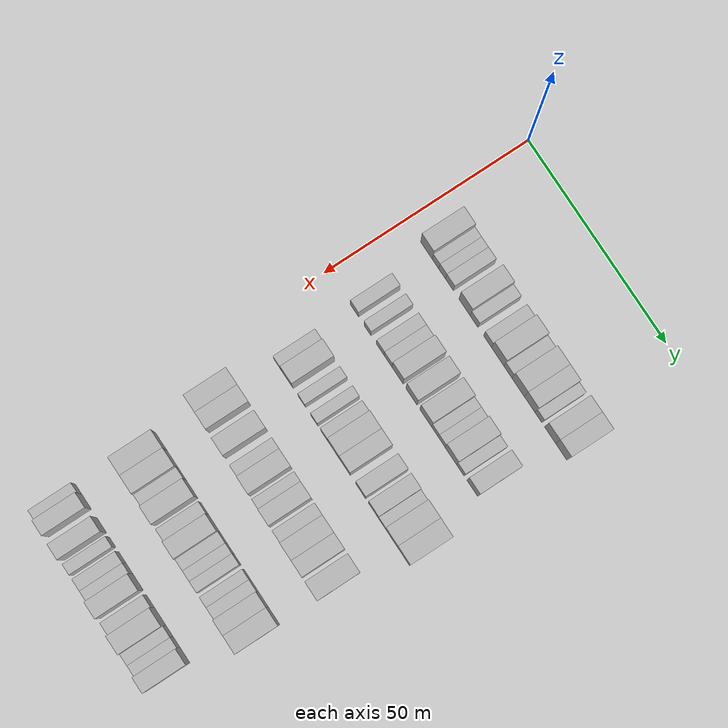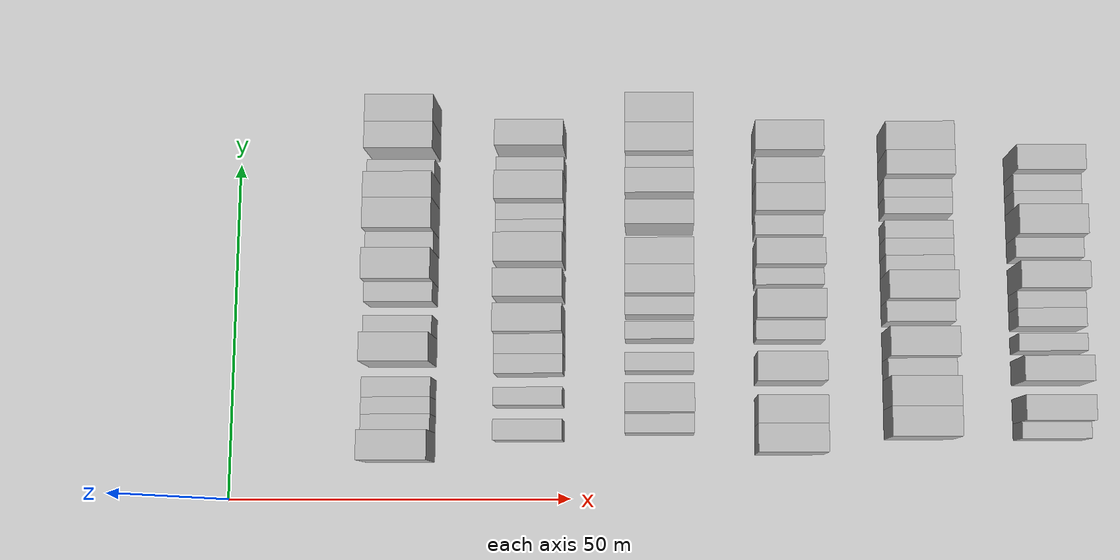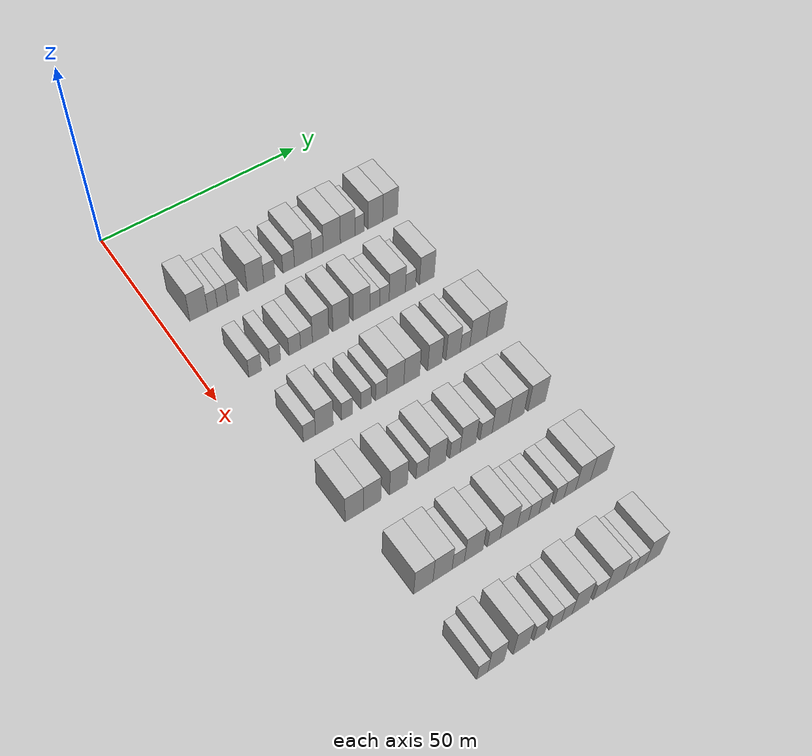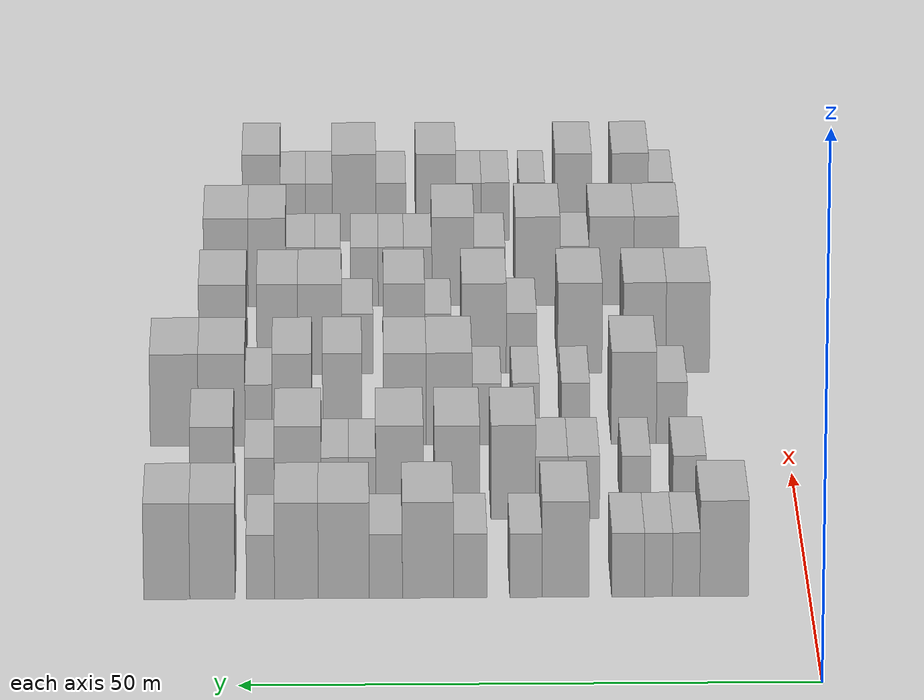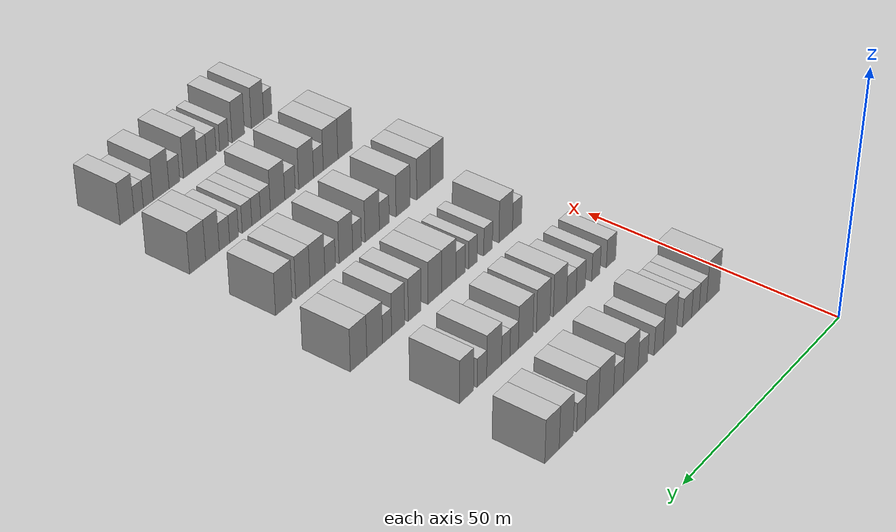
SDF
<sdf version="1.6">
 <world name="default">
  <model name="building_84">
   <static>1</static>
   <pose>25.0000 7.5457 0 0.000000 0.000000 0.000000</pose>
   <link name="link">
    <pose>0 0 4.50 0 0 0</pose>
    <collision name="collision"><geometry><box><size>10.0000 4.2700 9.0000</size></box></geometry></collision>
    <visual name="visual">
     <cast_shadows>0</cast_shadows>
     <geometry><box><size>10.0000 4.2700 9.0000</size></box></geometry>
     <material>
      <script>
       <uri>model://HANNAS_wall/materials/scripts</uri>
       <uri>model://HANNAS_wall/materials/textures</uri>
       <name>vrc/HANNAS_wall</name>
      </script>
     </material>
    </visual>
   </link>
  </model>
  <model name="building_85">
   <static>1</static>
   <pose>25.0000 10.8848 0 0.000000 0.000000 0.000000</pose>
   <link name="link">
    <pose>0 0 3.00 0 0 0</pose>
    <collision name="collision"><geometry><box><size>10.0000 2.4083 6.0000</size></box></geometry></collision>
    <visual name="visual">
     <cast_shadows>0</cast_shadows>
     <geometry><box><size>10.0000 2.4083 6.0000</size></box></geometry>
     <material>
      <script>
       <uri>model://HANNAS_wall/materials/scripts</uri>
       <uri>model://HANNAS_wall/materials/textures</uri>
       <name>vrc/HANNAS_wall</name>
      </script>
     </material>
    </visual>
   </link>
  </model>
  <model name="building_86">
   <static>1</static>
   <pose>25.0000 13.3215 0 0.000000 0.000000 0.000000</pose>
   <link name="link">
    <pose>0 0 3.00 0 0 0</pose>
    <collision name="collision"><geometry><box><size>10.0000 2.4652 6.0000</size></box></geometry></collision>
    <visual name="visual">
     <cast_shadows>0</cast_shadows>
     <geometry><box><size>10.0000 2.4652 6.0000</size></box></geometry>
     <material>
      <script>
       <uri>model://HANNAS_wall/materials/scripts</uri>
       <uri>model://HANNAS_wall/materials/textures</uri>
       <name>vrc/HANNAS_wall</name>
      </script>
     </material>
    </visual>
   </link>
  </model>
  <model name="building_87">
   <static>1</static>
   <pose>25.0000 15.9909 0 0.000000 0.000000 0.000000</pose>
   <link name="link">
    <pose>0 0 3.00 0 0 0</pose>
    <collision name="collision"><geometry><box><size>10.0000 2.8736 6.0000</size></box></geometry></collision>
    <visual name="visual">
     <cast_shadows>0</cast_shadows>
     <geometry><box><size>10.0000 2.8736 6.0000</size></box></geometry>
     <material>
      <script>
       <uri>model://HANNAS_wall/materials/scripts</uri>
       <uri>model://HANNAS_wall/materials/textures</uri>
       <name>vrc/HANNAS_wall</name>
      </script>
     </material>
    </visual>
   </link>
  </model>
  <model name="building_88">
   <static>1</static>
   <pose>25.0000 21.4960 0 0.000000 0.000000 0.000000</pose>
   <link name="link">
    <pose>0 0 4.50 0 0 0</pose>
    <collision name="collision"><geometry><box><size>10.0000 4.1366 9.0000</size></box></geometry></collision>
    <visual name="visual">
     <cast_shadows>0</cast_shadows>
     <geometry><box><size>10.0000 4.1366 9.0000</size></box></geometry>
     <material>
      <script>
       <uri>model://HANNAS_wall/materials/scripts</uri>
       <uri>model://HANNAS_wall/materials/textures</uri>
       <name>vrc/HANNAS_wall</name>
      </script>
     </material>
    </visual>
   </link>
  </model>
  <model name="building_89">
   <static>1</static>
   <pose>25.0000 24.9779 0 0.000000 0.000000 0.000000</pose>
   <link name="link">
    <pose>0 0 3.00 0 0 0</pose>
    <collision name="collision"><geometry><box><size>10.0000 2.8271 6.0000</size></box></geometry></collision>
    <visual name="visual">
     <cast_shadows>0</cast_shadows>
     <geometry><box><size>10.0000 2.8271 6.0000</size></box></geometry>
     <material>
      <script>
       <uri>model://HANNAS_wall/materials/scripts</uri>
       <uri>model://HANNAS_wall/materials/textures</uri>
       <name>vrc/HANNAS_wall</name>
      </script>
     </material>
    </visual>
   </link>
  </model>
  <model name="building_90">
   <static>1</static>
   <pose>25.0000 29.8726 0 0.000000 0.000000 0.000000</pose>
   <link name="link">
    <pose>0 0 3.00 0 0 0</pose>
    <collision name="collision"><geometry><box><size>10.0000 2.9623 6.0000</size></box></geometry></collision>
    <visual name="visual">
     <cast_shadows>0</cast_shadows>
     <geometry><box><size>10.0000 2.9623 6.0000</size></box></geometry>
     <material>
      <script>
       <uri>model://HANNAS_wall/materials/scripts</uri>
       <uri>model://HANNAS_wall/materials/textures</uri>
       <name>vrc/HANNAS_wall</name>
      </script>
     </material>
    </visual>
   </link>
  </model>
  <model name="building_91">
   <static>1</static>
   <pose>25.0000 33.5931 0 0.000000 0.000000 0.000000</pose>
   <link name="link">
    <pose>0 0 4.50 0 0 0</pose>
    <collision name="collision"><geometry><box><size>10.0000 4.4788 9.0000</size></box></geometry></collision>
    <visual name="visual">
     <cast_shadows>0</cast_shadows>
     <geometry><box><size>10.0000 4.4788 9.0000</size></box></geometry>
     <material>
      <script>
       <uri>model://HANNAS_wall/materials/scripts</uri>
       <uri>model://HANNAS_wall/materials/textures</uri>
       <name>vrc/HANNAS_wall</name>
      </script>
     </material>
    </visual>
   </link>
  </model>
  <model name="building_92">
   <static>1</static>
   <pose>25.0000 37.2843 0 0.000000 0.000000 0.000000</pose>
   <link name="link">
    <pose>0 0 3.00 0 0 0</pose>
    <collision name="collision"><geometry><box><size>10.0000 2.9035 6.0000</size></box></geometry></collision>
    <visual name="visual">
     <cast_shadows>0</cast_shadows>
     <geometry><box><size>10.0000 2.9035 6.0000</size></box></geometry>
     <material>
      <script>
       <uri>model://HANNAS_wall/materials/scripts</uri>
       <uri>model://HANNAS_wall/materials/textures</uri>
       <name>vrc/HANNAS_wall</name>
      </script>
     </material>
    </visual>
   </link>
  </model>
  <model name="building_93">
   <static>1</static>
   <pose>25.0000 40.9810 0 0.000000 0.000000 0.000000</pose>
   <link name="link">
    <pose>0 0 4.50 0 0 0</pose>
    <collision name="collision"><geometry><box><size>10.0000 4.4900 9.0000</size></box></geometry></collision>
    <visual name="visual">
     <cast_shadows>0</cast_shadows>
     <geometry><box><size>10.0000 4.4900 9.0000</size></box></geometry>
     <material>
      <script>
       <uri>model://HANNAS_wall/materials/scripts</uri>
       <uri>model://HANNAS_wall/materials/textures</uri>
       <name>vrc/HANNAS_wall</name>
      </script>
     </material>
    </visual>
   </link>
  </model>
  <model name="building_94">
   <static>1</static>
   <pose>25.0000 45.1451 0 0.000000 0.000000 0.000000</pose>
   <link name="link">
    <pose>0 0 4.50 0 0 0</pose>
    <collision name="collision"><geometry><box><size>10.0000 3.8382 9.0000</size></box></geometry></collision>
    <visual name="visual">
     <cast_shadows>0</cast_shadows>
     <geometry><box><size>10.0000 3.8382 9.0000</size></box></geometry>
     <material>
      <script>
       <uri>model://HANNAS_wall/materials/scripts</uri>
       <uri>model://HANNAS_wall/materials/textures</uri>
       <name>vrc/HANNAS_wall</name>
      </script>
     </material>
    </visual>
   </link>
  </model>
  <model name="building_95">
   <static>1</static>
   <pose>25.0000 48.2978 0 0.000000 0.000000 0.000000</pose>
   <link name="link">
    <pose>0 0 3.00 0 0 0</pose>
    <collision name="collision"><geometry><box><size>10.0000 2.4672 6.0000</size></box></geometry></collision>
    <visual name="visual">
     <cast_shadows>0</cast_shadows>
     <geometry><box><size>10.0000 2.4672 6.0000</size></box></geometry>
     <material>
      <script>
       <uri>model://HANNAS_wall/materials/scripts</uri>
       <uri>model://HANNAS_wall/materials/textures</uri>
       <name>vrc/HANNAS_wall</name>
      </script>
     </material>
    </visual>
   </link>
  </model>
  <model name="building_96">
   <static>1</static>
   <pose>25.0000 52.5233 0 0.000000 0.000000 0.000000</pose>
   <link name="link">
    <pose>0 0 4.50 0 0 0</pose>
    <collision name="collision"><geometry><box><size>10.0000 3.9838 9.0000</size></box></geometry></collision>
    <visual name="visual">
     <cast_shadows>0</cast_shadows>
     <geometry><box><size>10.0000 3.9838 9.0000</size></box></geometry>
     <material>
      <script>
       <uri>model://HANNAS_wall/materials/scripts</uri>
       <uri>model://HANNAS_wall/materials/textures</uri>
       <name>vrc/HANNAS_wall</name>
      </script>
     </material>
    </visual>
   </link>
  </model>
  <model name="building_97">
   <static>1</static>
   <pose>25.0000 56.5350 0 0.000000 0.000000 0.000000</pose>
   <link name="link">
    <pose>0 0 4.50 0 0 0</pose>
    <collision name="collision"><geometry><box><size>10.0000 4.0396 9.0000</size></box></geometry></collision>
    <visual name="visual">
     <cast_shadows>0</cast_shadows>
     <geometry><box><size>10.0000 4.0396 9.0000</size></box></geometry>
     <material>
      <script>
       <uri>model://HANNAS_wall/materials/scripts</uri>
       <uri>model://HANNAS_wall/materials/textures</uri>
       <name>vrc/HANNAS_wall</name>
      </script>
     </material>
    </visual>
   </link>
  </model>
  <model name="building_260">
   <static>1</static>
   <pose>44.0000 9.8420 0 0.000000 0.000000 0.000000</pose>
   <link name="link">
    <pose>0 0 3.00 0 0 0</pose>
    <collision name="collision"><geometry><box><size>10.0000 2.9731 6.0000</size></box></geometry></collision>
    <visual name="visual">
     <cast_shadows>0</cast_shadows>
     <geometry><box><size>10.0000 2.9731 6.0000</size></box></geometry>
     <material>
      <script>
       <uri>model://HANNAS_wall/materials/scripts</uri>
       <uri>model://HANNAS_wall/materials/textures</uri>
       <name>vrc/HANNAS_wall</name>
      </script>
     </material>
    </visual>
   </link>
  </model>
  <model name="building_261">
   <static>1</static>
   <pose>44.0000 14.6372 0 0.000000 0.000000 0.000000</pose>
   <link name="link">
    <pose>0 0 3.00 0 0 0</pose>
    <collision name="collision"><geometry><box><size>10.0000 2.6173 6.0000</size></box></geometry></collision>
    <visual name="visual">
     <cast_shadows>0</cast_shadows>
     <geometry><box><size>10.0000 2.6173 6.0000</size></box></geometry>
     <material>
      <script>
       <uri>model://HANNAS_wall/materials/scripts</uri>
       <uri>model://HANNAS_wall/materials/textures</uri>
       <name>vrc/HANNAS_wall</name>
      </script>
     </material>
    </visual>
   </link>
  </model>
  <model name="building_262">
   <static>1</static>
   <pose>44.0000 19.3692 0 0.000000 0.000000 0.000000</pose>
   <link name="link">
    <pose>0 0 3.00 0 0 0</pose>
    <collision name="collision"><geometry><box><size>10.0000 2.8468 6.0000</size></box></geometry></collision>
    <visual name="visual">
     <cast_shadows>0</cast_shadows>
     <geometry><box><size>10.0000 2.8468 6.0000</size></box></geometry>
     <material>
      <script>
       <uri>model://HANNAS_wall/materials/scripts</uri>
       <uri>model://HANNAS_wall/materials/textures</uri>
       <name>vrc/HANNAS_wall</name>
      </script>
     </material>
    </visual>
   </link>
  </model>
  <model name="building_263">
   <static>1</static>
   <pose>44.0000 22.2440 0 0.000000 0.000000 0.000000</pose>
   <link name="link">
    <pose>0 0 3.00 0 0 0</pose>
    <collision name="collision"><geometry><box><size>10.0000 2.9028 6.0000</size></box></geometry></collision>
    <visual name="visual">
     <cast_shadows>0</cast_shadows>
     <geometry><box><size>10.0000 2.9028 6.0000</size></box></geometry>
     <material>
      <script>
       <uri>model://HANNAS_wall/materials/scripts</uri>
       <uri>model://HANNAS_wall/materials/textures</uri>
       <name>vrc/HANNAS_wall</name>
      </script>
     </material>
    </visual>
   </link>
  </model>
  <model name="building_264">
   <static>1</static>
   <pose>44.0000 25.7083 0 0.000000 0.000000 0.000000</pose>
   <link name="link">
    <pose>0 0 4.50 0 0 0</pose>
    <collision name="collision"><geometry><box><size>10.0000 4.0258 9.0000</size></box></geometry></collision>
    <visual name="visual">
     <cast_shadows>0</cast_shadows>
     <geometry><box><size>10.0000 4.0258 9.0000</size></box></geometry>
     <material>
      <script>
       <uri>model://HANNAS_wall/materials/scripts</uri>
       <uri>model://HANNAS_wall/materials/textures</uri>
       <name>vrc/HANNAS_wall</name>
      </script>
     </material>
    </visual>
   </link>
  </model>
  <model name="building_265">
   <static>1</static>
   <pose>44.0000 30.7561 0 0.000000 0.000000 0.000000</pose>
   <link name="link">
    <pose>0 0 4.50 0 0 0</pose>
    <collision name="collision"><geometry><box><size>10.0000 4.0698 9.0000</size></box></geometry></collision>
    <visual name="visual">
     <cast_shadows>0</cast_shadows>
     <geometry><box><size>10.0000 4.0698 9.0000</size></box></geometry>
     <material>
      <script>
       <uri>model://HANNAS_wall/materials/scripts</uri>
       <uri>model://HANNAS_wall/materials/textures</uri>
       <name>vrc/HANNAS_wall</name>
      </script>
     </material>
    </visual>
   </link>
  </model>
  <model name="building_266">
   <static>1</static>
   <pose>44.0000 35.9371 0 0.000000 0.000000 0.000000</pose>
   <link name="link">
    <pose>0 0 4.50 0 0 0</pose>
    <collision name="collision"><geometry><box><size>10.0000 4.2922 9.0000</size></box></geometry></collision>
    <visual name="visual">
     <cast_shadows>0</cast_shadows>
     <geometry><box><size>10.0000 4.2922 9.0000</size></box></geometry>
     <material>
      <script>
       <uri>model://HANNAS_wall/materials/scripts</uri>
       <uri>model://HANNAS_wall/materials/textures</uri>
       <name>vrc/HANNAS_wall</name>
      </script>
     </material>
    </visual>
   </link>
  </model>
  <model name="building_267">
   <static>1</static>
   <pose>44.0000 39.3048 0 0.000000 0.000000 0.000000</pose>
   <link name="link">
    <pose>0 0 3.00 0 0 0</pose>
    <collision name="collision"><geometry><box><size>10.0000 2.4433 6.0000</size></box></geometry></collision>
    <visual name="visual">
     <cast_shadows>0</cast_shadows>
     <geometry><box><size>10.0000 2.4433 6.0000</size></box></geometry>
     <material>
      <script>
       <uri>model://HANNAS_wall/materials/scripts</uri>
       <uri>model://HANNAS_wall/materials/textures</uri>
       <name>vrc/HANNAS_wall</name>
      </script>
     </material>
    </visual>
   </link>
  </model>
  <model name="building_268">
   <static>1</static>
   <pose>44.0000 41.7525 0 0.000000 0.000000 0.000000</pose>
   <link name="link">
    <pose>0 0 3.00 0 0 0</pose>
    <collision name="collision"><geometry><box><size>10.0000 2.4520 6.0000</size></box></geometry></collision>
    <visual name="visual">
     <cast_shadows>0</cast_shadows>
     <geometry><box><size>10.0000 2.4520 6.0000</size></box></geometry>
     <material>
      <script>
       <uri>model://HANNAS_wall/materials/scripts</uri>
       <uri>model://HANNAS_wall/materials/textures</uri>
       <name>vrc/HANNAS_wall</name>
      </script>
     </material>
    </visual>
   </link>
  </model>
  <model name="building_269">
   <static>1</static>
   <pose>44.0000 45.0866 0 0.000000 0.000000 0.000000</pose>
   <link name="link">
    <pose>0 0 4.50 0 0 0</pose>
    <collision name="collision"><geometry><box><size>10.0000 4.2163 9.0000</size></box></geometry></collision>
    <visual name="visual">
     <cast_shadows>0</cast_shadows>
     <geometry><box><size>10.0000 4.2163 9.0000</size></box></geometry>
     <material>
      <script>
       <uri>model://HANNAS_wall/materials/scripts</uri>
       <uri>model://HANNAS_wall/materials/textures</uri>
       <name>vrc/HANNAS_wall</name>
      </script>
     </material>
    </visual>
   </link>
  </model>
  <model name="building_270">
   <static>1</static>
   <pose>44.0000 48.5421 0 0.000000 0.000000 0.000000</pose>
   <link name="link">
    <pose>0 0 3.00 0 0 0</pose>
    <collision name="collision"><geometry><box><size>10.0000 2.6947 6.0000</size></box></geometry></collision>
    <visual name="visual">
     <cast_shadows>0</cast_shadows>
     <geometry><box><size>10.0000 2.6947 6.0000</size></box></geometry>
     <material>
      <script>
       <uri>model://HANNAS_wall/materials/scripts</uri>
       <uri>model://HANNAS_wall/materials/textures</uri>
       <name>vrc/HANNAS_wall</name>
      </script>
     </material>
    </visual>
   </link>
  </model>
  <model name="building_271">
   <static>1</static>
   <pose>44.0000 52.8341 0 0.000000 0.000000 0.000000</pose>
   <link name="link">
    <pose>0 0 4.50 0 0 0</pose>
    <collision name="collision"><geometry><box><size>10.0000 3.8892 9.0000</size></box></geometry></collision>
    <visual name="visual">
     <cast_shadows>0</cast_shadows>
     <geometry><box><size>10.0000 3.8892 9.0000</size></box></geometry>
     <material>
      <script>
       <uri>model://HANNAS_wall/materials/scripts</uri>
       <uri>model://HANNAS_wall/materials/textures</uri>
       <name>vrc/HANNAS_wall</name>
      </script>
     </material>
    </visual>
   </link>
  </model>
  <model name="building_426">
   <static>1</static>
   <pose>63.0000 10.7050 0 0.000000 0.000000 0.000000</pose>
   <link name="link">
    <pose>0 0 3.00 0 0 0</pose>
    <collision name="collision"><geometry><box><size>10.0000 2.8225 6.0000</size></box></geometry></collision>
    <visual name="visual">
     <cast_shadows>0</cast_shadows>
     <geometry><box><size>10.0000 2.8225 6.0000</size></box></geometry>
     <material>
      <script>
       <uri>model://HANNAS_wall/materials/scripts</uri>
       <uri>model://HANNAS_wall/materials/textures</uri>
       <name>vrc/HANNAS_wall</name>
      </script>
     </material>
    </visual>
   </link>
  </model>
  <model name="building_427">
   <static>1</static>
   <pose>63.0000 14.1989 0 0.000000 0.000000 0.000000</pose>
   <link name="link">
    <pose>0 0 4.50 0 0 0</pose>
    <collision name="collision"><geometry><box><size>10.0000 4.1654 9.0000</size></box></geometry></collision>
    <visual name="visual">
     <cast_shadows>0</cast_shadows>
     <geometry><box><size>10.0000 4.1654 9.0000</size></box></geometry>
     <material>
      <script>
       <uri>model://HANNAS_wall/materials/scripts</uri>
       <uri>model://HANNAS_wall/materials/textures</uri>
       <name>vrc/HANNAS_wall</name>
      </script>
     </material>
    </visual>
   </link>
  </model>
  <model name="building_428">
   <static>1</static>
   <pose>63.0000 19.5902 0 0.000000 0.000000 0.000000</pose>
   <link name="link">
    <pose>0 0 3.00 0 0 0</pose>
    <collision name="collision"><geometry><box><size>10.0000 2.6171 6.0000</size></box></geometry></collision>
    <visual name="visual">
     <cast_shadows>0</cast_shadows>
     <geometry><box><size>10.0000 2.6171 6.0000</size></box></geometry>
     <material>
      <script>
       <uri>model://HANNAS_wall/materials/scripts</uri>
       <uri>model://HANNAS_wall/materials/textures</uri>
       <name>vrc/HANNAS_wall</name>
      </script>
     </material>
    </visual>
   </link>
  </model>
  <model name="building_429">
   <static>1</static>
   <pose>63.0000 24.1544 0 0.000000 0.000000 0.000000</pose>
   <link name="link">
    <pose>0 0 3.00 0 0 0</pose>
    <collision name="collision"><geometry><box><size>10.0000 2.5111 6.0000</size></box></geometry></collision>
    <visual name="visual">
     <cast_shadows>0</cast_shadows>
     <geometry><box><size>10.0000 2.5111 6.0000</size></box></geometry>
     <material>
      <script>
       <uri>model://HANNAS_wall/materials/scripts</uri>
       <uri>model://HANNAS_wall/materials/textures</uri>
       <name>vrc/HANNAS_wall</name>
      </script>
     </material>
    </visual>
   </link>
  </model>
  <model name="building_430">
   <static>1</static>
   <pose>63.0000 27.7669 0 0.000000 0.000000 0.000000</pose>
   <link name="link">
    <pose>0 0 3.00 0 0 0</pose>
    <collision name="collision"><geometry><box><size>10.0000 2.7139 6.0000</size></box></geometry></collision>
    <visual name="visual">
     <cast_shadows>0</cast_shadows>
     <geometry><box><size>10.0000 2.7139 6.0000</size></box></geometry>
     <material>
      <script>
       <uri>model://HANNAS_wall/materials/scripts</uri>
       <uri>model://HANNAS_wall/materials/textures</uri>
       <name>vrc/HANNAS_wall</name>
      </script>
     </material>
    </visual>
   </link>
  </model>
  <model name="building_431">
   <static>1</static>
   <pose>63.0000 31.2356 0 0.000000 0.000000 0.000000</pose>
   <link name="link">
    <pose>0 0 4.50 0 0 0</pose>
    <collision name="collision"><geometry><box><size>10.0000 4.2235 9.0000</size></box></geometry></collision>
    <visual name="visual">
     <cast_shadows>0</cast_shadows>
     <geometry><box><size>10.0000 4.2235 9.0000</size></box></geometry>
     <material>
      <script>
       <uri>model://HANNAS_wall/materials/scripts</uri>
       <uri>model://HANNAS_wall/materials/textures</uri>
       <name>vrc/HANNAS_wall</name>
      </script>
     </material>
    </visual>
   </link>
  </model>
  <model name="building_432">
   <static>1</static>
   <pose>63.0000 35.3106 0 0.000000 0.000000 0.000000</pose>
   <link name="link">
    <pose>0 0 4.50 0 0 0</pose>
    <collision name="collision"><geometry><box><size>10.0000 3.9266 9.0000</size></box></geometry></collision>
    <visual name="visual">
     <cast_shadows>0</cast_shadows>
     <geometry><box><size>10.0000 3.9266 9.0000</size></box></geometry>
     <material>
      <script>
       <uri>model://HANNAS_wall/materials/scripts</uri>
       <uri>model://HANNAS_wall/materials/textures</uri>
       <name>vrc/HANNAS_wall</name>
      </script>
     </material>
    </visual>
   </link>
  </model>
  <model name="building_433">
   <static>1</static>
   <pose>63.0000 41.0786 0 0.000000 0.000000 0.000000</pose>
   <link name="link">
    <pose>0 0 4.50 0 0 0</pose>
    <collision name="collision"><geometry><box><size>10.0000 3.6093 9.0000</size></box></geometry></collision>
    <visual name="visual">
     <cast_shadows>0</cast_shadows>
     <geometry><box><size>10.0000 3.6093 9.0000</size></box></geometry>
     <material>
      <script>
       <uri>model://HANNAS_wall/materials/scripts</uri>
       <uri>model://HANNAS_wall/materials/textures</uri>
       <name>vrc/HANNAS_wall</name>
      </script>
     </material>
    </visual>
   </link>
  </model>
  <model name="building_434">
   <static>1</static>
   <pose>63.0000 45.7113 0 0.000000 0.000000 0.000000</pose>
   <link name="link">
    <pose>0 0 4.50 0 0 0</pose>
    <collision name="collision"><geometry><box><size>10.0000 3.6561 9.0000</size></box></geometry></collision>
    <visual name="visual">
     <cast_shadows>0</cast_shadows>
     <geometry><box><size>10.0000 3.6561 9.0000</size></box></geometry>
     <material>
      <script>
       <uri>model://HANNAS_wall/materials/scripts</uri>
       <uri>model://HANNAS_wall/materials/textures</uri>
       <name>vrc/HANNAS_wall</name>
      </script>
     </material>
    </visual>
   </link>
  </model>
  <model name="building_435">
   <static>1</static>
   <pose>63.0000 48.7910 0 0.000000 0.000000 0.000000</pose>
   <link name="link">
    <pose>0 0 3.00 0 0 0</pose>
    <collision name="collision"><geometry><box><size>10.0000 2.5033 6.0000</size></box></geometry></collision>
    <visual name="visual">
     <cast_shadows>0</cast_shadows>
     <geometry><box><size>10.0000 2.5033 6.0000</size></box></geometry>
     <material>
      <script>
       <uri>model://HANNAS_wall/materials/scripts</uri>
       <uri>model://HANNAS_wall/materials/textures</uri>
       <name>vrc/HANNAS_wall</name>
      </script>
     </material>
    </visual>
   </link>
  </model>
  <model name="building_436">
   <static>1</static>
   <pose>63.0000 52.1984 0 0.000000 0.000000 0.000000</pose>
   <link name="link">
    <pose>0 0 4.50 0 0 0</pose>
    <collision name="collision"><geometry><box><size>10.0000 4.3114 9.0000</size></box></geometry></collision>
    <visual name="visual">
     <cast_shadows>0</cast_shadows>
     <geometry><box><size>10.0000 4.3114 9.0000</size></box></geometry>
     <material>
      <script>
       <uri>model://HANNAS_wall/materials/scripts</uri>
       <uri>model://HANNAS_wall/materials/textures</uri>
       <name>vrc/HANNAS_wall</name>
      </script>
     </material>
    </visual>
   </link>
  </model>
  <model name="building_437">
   <static>1</static>
   <pose>63.0000 56.5733 0 0.000000 0.000000 0.000000</pose>
   <link name="link">
    <pose>0 0 4.50 0 0 0</pose>
    <collision name="collision"><geometry><box><size>10.0000 4.4383 9.0000</size></box></geometry></collision>
    <visual name="visual">
     <cast_shadows>0</cast_shadows>
     <geometry><box><size>10.0000 4.4383 9.0000</size></box></geometry>
     <material>
      <script>
       <uri>model://HANNAS_wall/materials/scripts</uri>
       <uri>model://HANNAS_wall/materials/textures</uri>
       <name>vrc/HANNAS_wall</name>
      </script>
     </material>
    </visual>
   </link>
  </model>
  <model name="building_593">
   <static>1</static>
   <pose>82.0000 8.4632 0 0.000000 0.000000 0.000000</pose>
   <link name="link">
    <pose>0 0 4.50 0 0 0</pose>
    <collision name="collision"><geometry><box><size>10.0000 4.1077 9.0000</size></box></geometry></collision>
    <visual name="visual">
     <cast_shadows>0</cast_shadows>
     <geometry><box><size>10.0000 4.1077 9.0000</size></box></geometry>
     <material>
      <script>
       <uri>model://HANNAS_wall/materials/scripts</uri>
       <uri>model://HANNAS_wall/materials/textures</uri>
       <name>vrc/HANNAS_wall</name>
      </script>
     </material>
    </visual>
   </link>
  </model>
  <model name="building_594">
   <static>1</static>
   <pose>82.0000 12.5339 0 0.000000 0.000000 0.000000</pose>
   <link name="link">
    <pose>0 0 4.50 0 0 0</pose>
    <collision name="collision"><geometry><box><size>10.0000 4.0336 9.0000</size></box></geometry></collision>
    <visual name="visual">
     <cast_shadows>0</cast_shadows>
     <geometry><box><size>10.0000 4.0336 9.0000</size></box></geometry>
     <material>
      <script>
       <uri>model://HANNAS_wall/materials/scripts</uri>
       <uri>model://HANNAS_wall/materials/textures</uri>
       <name>vrc/HANNAS_wall</name>
      </script>
     </material>
    </visual>
   </link>
  </model>
  <model name="building_595">
   <static>1</static>
   <pose>82.0000 18.6446 0 0.000000 0.000000 0.000000</pose>
   <link name="link">
    <pose>0 0 4.50 0 0 0</pose>
    <collision name="collision"><geometry><box><size>10.0000 4.1879 9.0000</size></box></geometry></collision>
    <visual name="visual">
     <cast_shadows>0</cast_shadows>
     <geometry><box><size>10.0000 4.1879 9.0000</size></box></geometry>
     <material>
      <script>
       <uri>model://HANNAS_wall/materials/scripts</uri>
       <uri>model://HANNAS_wall/materials/textures</uri>
       <name>vrc/HANNAS_wall</name>
      </script>
     </material>
    </visual>
   </link>
  </model>
  <model name="building_596">
   <static>1</static>
   <pose>82.0000 24.1711 0 0.000000 0.000000 0.000000</pose>
   <link name="link">
    <pose>0 0 3.00 0 0 0</pose>
    <collision name="collision"><geometry><box><size>10.0000 2.8652 6.0000</size></box></geometry></collision>
    <visual name="visual">
     <cast_shadows>0</cast_shadows>
     <geometry><box><size>10.0000 2.8652 6.0000</size></box></geometry>
     <material>
      <script>
       <uri>model://HANNAS_wall/materials/scripts</uri>
       <uri>model://HANNAS_wall/materials/textures</uri>
       <name>vrc/HANNAS_wall</name>
      </script>
     </material>
    </visual>
   </link>
  </model>
  <model name="building_597">
   <static>1</static>
   <pose>82.0000 27.6988 0 0.000000 0.000000 0.000000</pose>
   <link name="link">
    <pose>0 0 4.50 0 0 0</pose>
    <collision name="collision"><geometry><box><size>10.0000 4.1901 9.0000</size></box></geometry></collision>
    <visual name="visual">
     <cast_shadows>0</cast_shadows>
     <geometry><box><size>10.0000 4.1901 9.0000</size></box></geometry>
     <material>
      <script>
       <uri>model://HANNAS_wall/materials/scripts</uri>
       <uri>model://HANNAS_wall/materials/textures</uri>
       <name>vrc/HANNAS_wall</name>
      </script>
     </material>
    </visual>
   </link>
  </model>
  <model name="building_598">
   <static>1</static>
   <pose>82.0000 32.0466 0 0.000000 0.000000 0.000000</pose>
   <link name="link">
    <pose>0 0 3.00 0 0 0</pose>
    <collision name="collision"><geometry><box><size>10.0000 2.5057 6.0000</size></box></geometry></collision>
    <visual name="visual">
     <cast_shadows>0</cast_shadows>
     <geometry><box><size>10.0000 2.5057 6.0000</size></box></geometry>
     <material>
      <script>
       <uri>model://HANNAS_wall/materials/scripts</uri>
       <uri>model://HANNAS_wall/materials/textures</uri>
       <name>vrc/HANNAS_wall</name>
      </script>
     </material>
    </visual>
   </link>
  </model>
  <model name="building_599">
   <static>1</static>
   <pose>82.0000 35.2369 0 0.000000 0.000000 0.000000</pose>
   <link name="link">
    <pose>0 0 4.50 0 0 0</pose>
    <collision name="collision"><geometry><box><size>10.0000 3.8749 9.0000</size></box></geometry></collision>
    <visual name="visual">
     <cast_shadows>0</cast_shadows>
     <geometry><box><size>10.0000 3.8749 9.0000</size></box></geometry>
     <material>
      <script>
       <uri>model://HANNAS_wall/materials/scripts</uri>
       <uri>model://HANNAS_wall/materials/textures</uri>
       <name>vrc/HANNAS_wall</name>
      </script>
     </material>
    </visual>
   </link>
  </model>
  <model name="building_600">
   <static>1</static>
   <pose>82.0000 39.6520 0 0.000000 0.000000 0.000000</pose>
   <link name="link">
    <pose>0 0 3.00 0 0 0</pose>
    <collision name="collision"><geometry><box><size>10.0000 2.9554 6.0000</size></box></geometry></collision>
    <visual name="visual">
     <cast_shadows>0</cast_shadows>
     <geometry><box><size>10.0000 2.9554 6.0000</size></box></geometry>
     <material>
      <script>
       <uri>model://HANNAS_wall/materials/scripts</uri>
       <uri>model://HANNAS_wall/materials/textures</uri>
       <name>vrc/HANNAS_wall</name>
      </script>
     </material>
    </visual>
   </link>
  </model>
  <model name="building_601">
   <static>1</static>
   <pose>82.0000 43.1965 0 0.000000 0.000000 0.000000</pose>
   <link name="link">
    <pose>0 0 4.50 0 0 0</pose>
    <collision name="collision"><geometry><box><size>10.0000 4.1335 9.0000</size></box></geometry></collision>
    <visual name="visual">
     <cast_shadows>0</cast_shadows>
     <geometry><box><size>10.0000 4.1335 9.0000</size></box></geometry>
     <material>
      <script>
       <uri>model://HANNAS_wall/materials/scripts</uri>
       <uri>model://HANNAS_wall/materials/textures</uri>
       <name>vrc/HANNAS_wall</name>
      </script>
     </material>
    </visual>
   </link>
  </model>
  <model name="building_602">
   <static>1</static>
   <pose>82.0000 47.1957 0 0.000000 0.000000 0.000000</pose>
   <link name="link">
    <pose>0 0 4.50 0 0 0</pose>
    <collision name="collision"><geometry><box><size>10.0000 3.8650 9.0000</size></box></geometry></collision>
    <visual name="visual">
     <cast_shadows>0</cast_shadows>
     <geometry><box><size>10.0000 3.8650 9.0000</size></box></geometry>
     <material>
      <script>
       <uri>model://HANNAS_wall/materials/scripts</uri>
       <uri>model://HANNAS_wall/materials/textures</uri>
       <name>vrc/HANNAS_wall</name>
      </script>
     </material>
    </visual>
   </link>
  </model>
  <model name="building_603">
   <static>1</static>
   <pose>82.0000 52.3591 0 0.000000 0.000000 0.000000</pose>
   <link name="link">
    <pose>0 0 4.50 0 0 0</pose>
    <collision name="collision"><geometry><box><size>10.0000 4.4618 9.0000</size></box></geometry></collision>
    <visual name="visual">
     <cast_shadows>0</cast_shadows>
     <geometry><box><size>10.0000 4.4618 9.0000</size></box></geometry>
     <material>
      <script>
       <uri>model://HANNAS_wall/materials/scripts</uri>
       <uri>model://HANNAS_wall/materials/textures</uri>
       <name>vrc/HANNAS_wall</name>
      </script>
     </material>
    </visual>
   </link>
  </model>
  <model name="building_777">
   <static>1</static>
   <pose>101.0000 10.7543 0 0.000000 0.000000 0.000000</pose>
   <link name="link">
    <pose>0 0 4.50 0 0 0</pose>
    <collision name="collision"><geometry><box><size>10.0000 4.3039 9.0000</size></box></geometry></collision>
    <visual name="visual">
     <cast_shadows>0</cast_shadows>
     <geometry><box><size>10.0000 4.3039 9.0000</size></box></geometry>
     <material>
      <script>
       <uri>model://HANNAS_wall/materials/scripts</uri>
       <uri>model://HANNAS_wall/materials/textures</uri>
       <name>vrc/HANNAS_wall</name>
      </script>
     </material>
    </visual>
   </link>
  </model>
  <model name="building_778">
   <static>1</static>
   <pose>101.0000 15.0675 0 0.000000 0.000000 0.000000</pose>
   <link name="link">
    <pose>0 0 4.50 0 0 0</pose>
    <collision name="collision"><geometry><box><size>10.0000 4.3227 9.0000</size></box></geometry></collision>
    <visual name="visual">
     <cast_shadows>0</cast_shadows>
     <geometry><box><size>10.0000 4.3227 9.0000</size></box></geometry>
     <material>
      <script>
       <uri>model://HANNAS_wall/materials/scripts</uri>
       <uri>model://HANNAS_wall/materials/textures</uri>
       <name>vrc/HANNAS_wall</name>
      </script>
     </material>
    </visual>
   </link>
  </model>
  <model name="building_779">
   <static>1</static>
   <pose>101.0000 18.6444 0 0.000000 0.000000 0.000000</pose>
   <link name="link">
    <pose>0 0 3.00 0 0 0</pose>
    <collision name="collision"><geometry><box><size>10.0000 2.8310 6.0000</size></box></geometry></collision>
    <visual name="visual">
     <cast_shadows>0</cast_shadows>
     <geometry><box><size>10.0000 2.8310 6.0000</size></box></geometry>
     <material>
      <script>
       <uri>model://HANNAS_wall/materials/scripts</uri>
       <uri>model://HANNAS_wall/materials/textures</uri>
       <name>vrc/HANNAS_wall</name>
      </script>
     </material>
    </visual>
   </link>
  </model>
  <model name="building_780">
   <static>1</static>
   <pose>101.0000 22.2035 0 0.000000 0.000000 0.000000</pose>
   <link name="link">
    <pose>0 0 4.50 0 0 0</pose>
    <collision name="collision"><geometry><box><size>10.0000 4.2874 9.0000</size></box></geometry></collision>
    <visual name="visual">
     <cast_shadows>0</cast_shadows>
     <geometry><box><size>10.0000 4.2874 9.0000</size></box></geometry>
     <material>
      <script>
       <uri>model://HANNAS_wall/materials/scripts</uri>
       <uri>model://HANNAS_wall/materials/textures</uri>
       <name>vrc/HANNAS_wall</name>
      </script>
     </material>
    </visual>
   </link>
  </model>
  <model name="building_781">
   <static>1</static>
   <pose>101.0000 26.8468 0 0.000000 0.000000 0.000000</pose>
   <link name="link">
    <pose>0 0 3.00 0 0 0</pose>
    <collision name="collision"><geometry><box><size>10.0000 2.9992 6.0000</size></box></geometry></collision>
    <visual name="visual">
     <cast_shadows>0</cast_shadows>
     <geometry><box><size>10.0000 2.9992 6.0000</size></box></geometry>
     <material>
      <script>
       <uri>model://HANNAS_wall/materials/scripts</uri>
       <uri>model://HANNAS_wall/materials/textures</uri>
       <name>vrc/HANNAS_wall</name>
      </script>
     </material>
    </visual>
   </link>
  </model>
  <model name="building_782">
   <static>1</static>
   <pose>101.0000 30.3816 0 0.000000 0.000000 0.000000</pose>
   <link name="link">
    <pose>0 0 4.50 0 0 0</pose>
    <collision name="collision"><geometry><box><size>10.0000 4.0706 9.0000</size></box></geometry></collision>
    <visual name="visual">
     <cast_shadows>0</cast_shadows>
     <geometry><box><size>10.0000 4.0706 9.0000</size></box></geometry>
     <material>
      <script>
       <uri>model://HANNAS_wall/materials/scripts</uri>
       <uri>model://HANNAS_wall/materials/textures</uri>
       <name>vrc/HANNAS_wall</name>
      </script>
     </material>
    </visual>
   </link>
  </model>
  <model name="building_783">
   <static>1</static>
   <pose>101.0000 33.7789 0 0.000000 0.000000 0.000000</pose>
   <link name="link">
    <pose>0 0 3.00 0 0 0</pose>
    <collision name="collision"><geometry><box><size>10.0000 2.7241 6.0000</size></box></geometry></collision>
    <visual name="visual">
     <cast_shadows>0</cast_shadows>
     <geometry><box><size>10.0000 2.7241 6.0000</size></box></geometry>
     <material>
      <script>
       <uri>model://HANNAS_wall/materials/scripts</uri>
       <uri>model://HANNAS_wall/materials/textures</uri>
       <name>vrc/HANNAS_wall</name>
      </script>
     </material>
    </visual>
   </link>
  </model>
  <model name="building_784">
   <static>1</static>
   <pose>101.0000 36.3705 0 0.000000 0.000000 0.000000</pose>
   <link name="link">
    <pose>0 0 3.00 0 0 0</pose>
    <collision name="collision"><geometry><box><size>10.0000 2.4590 6.0000</size></box></geometry></collision>
    <visual name="visual">
     <cast_shadows>0</cast_shadows>
     <geometry><box><size>10.0000 2.4590 6.0000</size></box></geometry>
     <material>
      <script>
       <uri>model://HANNAS_wall/materials/scripts</uri>
       <uri>model://HANNAS_wall/materials/textures</uri>
       <name>vrc/HANNAS_wall</name>
      </script>
     </material>
    </visual>
   </link>
  </model>
  <model name="building_785">
   <static>1</static>
   <pose>101.0000 38.9265 0 0.000000 0.000000 0.000000</pose>
   <link name="link">
    <pose>0 0 3.00 0 0 0</pose>
    <collision name="collision"><geometry><box><size>10.0000 2.6530 6.0000</size></box></geometry></collision>
    <visual name="visual">
     <cast_shadows>0</cast_shadows>
     <geometry><box><size>10.0000 2.6530 6.0000</size></box></geometry>
     <material>
      <script>
       <uri>model://HANNAS_wall/materials/scripts</uri>
       <uri>model://HANNAS_wall/materials/textures</uri>
       <name>vrc/HANNAS_wall</name>
      </script>
     </material>
    </visual>
   </link>
  </model>
  <model name="building_786">
   <static>1</static>
   <pose>101.0000 42.4771 0 0.000000 0.000000 0.000000</pose>
   <link name="link">
    <pose>0 0 3.00 0 0 0</pose>
    <collision name="collision"><geometry><box><size>10.0000 2.4483 6.0000</size></box></geometry></collision>
    <visual name="visual">
     <cast_shadows>0</cast_shadows>
     <geometry><box><size>10.0000 2.4483 6.0000</size></box></geometry>
     <material>
      <script>
       <uri>model://HANNAS_wall/materials/scripts</uri>
       <uri>model://HANNAS_wall/materials/textures</uri>
       <name>vrc/HANNAS_wall</name>
      </script>
     </material>
    </visual>
   </link>
  </model>
  <model name="building_787">
   <static>1</static>
   <pose>101.0000 45.1013 0 0.000000 0.000000 0.000000</pose>
   <link name="link">
    <pose>0 0 3.00 0 0 0</pose>
    <collision name="collision"><geometry><box><size>10.0000 2.8000 6.0000</size></box></geometry></collision>
    <visual name="visual">
     <cast_shadows>0</cast_shadows>
     <geometry><box><size>10.0000 2.8000 6.0000</size></box></geometry>
     <material>
      <script>
       <uri>model://HANNAS_wall/materials/scripts</uri>
       <uri>model://HANNAS_wall/materials/textures</uri>
       <name>vrc/HANNAS_wall</name>
      </script>
     </material>
    </visual>
   </link>
  </model>
  <model name="building_788">
   <static>1</static>
   <pose>101.0000 48.3286 0 0.000000 0.000000 0.000000</pose>
   <link name="link">
    <pose>0 0 4.50 0 0 0</pose>
    <collision name="collision"><geometry><box><size>10.0000 3.6546 9.0000</size></box></geometry></collision>
    <visual name="visual">
     <cast_shadows>0</cast_shadows>
     <geometry><box><size>10.0000 3.6546 9.0000</size></box></geometry>
     <material>
      <script>
       <uri>model://HANNAS_wall/materials/scripts</uri>
       <uri>model://HANNAS_wall/materials/textures</uri>
       <name>vrc/HANNAS_wall</name>
      </script>
     </material>
    </visual>
   </link>
  </model>
  <model name="building_789">
   <static>1</static>
   <pose>101.0000 52.2904 0 0.000000 0.000000 0.000000</pose>
   <link name="link">
    <pose>0 0 4.50 0 0 0</pose>
    <collision name="collision"><geometry><box><size>10.0000 4.2689 9.0000</size></box></geometry></collision>
    <visual name="visual">
     <cast_shadows>0</cast_shadows>
     <geometry><box><size>10.0000 4.2689 9.0000</size></box></geometry>
     <material>
      <script>
       <uri>model://HANNAS_wall/materials/scripts</uri>
       <uri>model://HANNAS_wall/materials/textures</uri>
       <name>vrc/HANNAS_wall</name>
      </script>
     </material>
    </visual>
   </link>
  </model>
  <model name="building_955">
   <static>1</static>
   <pose>120.0000 9.6503 0 0.000000 0.000000 0.000000</pose>
   <link name="link">
    <pose>0 0 3.00 0 0 0</pose>
    <collision name="collision"><geometry><box><size>10.0000 2.4331 6.0000</size></box></geometry></collision>
    <visual name="visual">
     <cast_shadows>0</cast_shadows>
     <geometry><box><size>10.0000 2.4331 6.0000</size></box></geometry>
     <material>
      <script>
       <uri>model://HANNAS_wall/materials/scripts</uri>
       <uri>model://HANNAS_wall/materials/textures</uri>
       <name>vrc/HANNAS_wall</name>
      </script>
     </material>
    </visual>
   </link>
  </model>
  <model name="building_956">
   <static>1</static>
   <pose>120.0000 12.6693 0 0.000000 0.000000 0.000000</pose>
   <link name="link">
    <pose>0 0 4.50 0 0 0</pose>
    <collision name="collision"><geometry><box><size>10.0000 3.6049 9.0000</size></box></geometry></collision>
    <visual name="visual">
     <cast_shadows>0</cast_shadows>
     <geometry><box><size>10.0000 3.6049 9.0000</size></box></geometry>
     <material>
      <script>
       <uri>model://HANNAS_wall/materials/scripts</uri>
       <uri>model://HANNAS_wall/materials/textures</uri>
       <name>vrc/HANNAS_wall</name>
      </script>
     </material>
    </visual>
   </link>
  </model>
  <model name="building_957">
   <static>1</static>
   <pose>120.0000 18.2764 0 0.000000 0.000000 0.000000</pose>
   <link name="link">
    <pose>0 0 4.50 0 0 0</pose>
    <collision name="collision"><geometry><box><size>10.0000 3.6093 9.0000</size></box></geometry></collision>
    <visual name="visual">
     <cast_shadows>0</cast_shadows>
     <geometry><box><size>10.0000 3.6093 9.0000</size></box></geometry>
     <material>
      <script>
       <uri>model://HANNAS_wall/materials/scripts</uri>
       <uri>model://HANNAS_wall/materials/textures</uri>
       <name>vrc/HANNAS_wall</name>
      </script>
     </material>
    </visual>
   </link>
  </model>
  <model name="building_958">
   <static>1</static>
   <pose>120.0000 22.3364 0 0.000000 0.000000 0.000000</pose>
   <link name="link">
    <pose>0 0 3.00 0 0 0</pose>
    <collision name="collision"><geometry><box><size>10.0000 2.5107 6.0000</size></box></geometry></collision>
    <visual name="visual">
     <cast_shadows>0</cast_shadows>
     <geometry><box><size>10.0000 2.5107 6.0000</size></box></geometry>
     <material>
      <script>
       <uri>model://HANNAS_wall/materials/scripts</uri>
       <uri>model://HANNAS_wall/materials/textures</uri>
       <name>vrc/HANNAS_wall</name>
      </script>
     </material>
    </visual>
   </link>
  </model>
  <model name="building_959">
   <static>1</static>
   <pose>120.0000 25.9657 0 0.000000 0.000000 0.000000</pose>
   <link name="link">
    <pose>0 0 3.00 0 0 0</pose>
    <collision name="collision"><geometry><box><size>10.0000 2.7478 6.0000</size></box></geometry></collision>
    <visual name="visual">
     <cast_shadows>0</cast_shadows>
     <geometry><box><size>10.0000 2.7478 6.0000</size></box></geometry>
     <material>
      <script>
       <uri>model://HANNAS_wall/materials/scripts</uri>
       <uri>model://HANNAS_wall/materials/textures</uri>
       <name>vrc/HANNAS_wall</name>
      </script>
     </material>
    </visual>
   </link>
  </model>
  <model name="building_960">
   <static>1</static>
   <pose>120.0000 28.5912 0 0.000000 0.000000 0.000000</pose>
   <link name="link">
    <pose>0 0 3.00 0 0 0</pose>
    <collision name="collision"><geometry><box><size>10.0000 2.5032 6.0000</size></box></geometry></collision>
    <visual name="visual">
     <cast_shadows>0</cast_shadows>
     <geometry><box><size>10.0000 2.5032 6.0000</size></box></geometry>
     <material>
      <script>
       <uri>model://HANNAS_wall/materials/scripts</uri>
       <uri>model://HANNAS_wall/materials/textures</uri>
       <name>vrc/HANNAS_wall</name>
      </script>
     </material>
    </visual>
   </link>
  </model>
  <model name="building_961">
   <static>1</static>
   <pose>120.0000 31.8145 0 0.000000 0.000000 0.000000</pose>
   <link name="link">
    <pose>0 0 4.50 0 0 0</pose>
    <collision name="collision"><geometry><box><size>10.0000 3.9435 9.0000</size></box></geometry></collision>
    <visual name="visual">
     <cast_shadows>0</cast_shadows>
     <geometry><box><size>10.0000 3.9435 9.0000</size></box></geometry>
     <material>
      <script>
       <uri>model://HANNAS_wall/materials/scripts</uri>
       <uri>model://HANNAS_wall/materials/textures</uri>
       <name>vrc/HANNAS_wall</name>
      </script>
     </material>
    </visual>
   </link>
  </model>
  <model name="building_962">
   <static>1</static>
   <pose>120.0000 36.2581 0 0.000000 0.000000 0.000000</pose>
   <link name="link">
    <pose>0 0 3.00 0 0 0</pose>
    <collision name="collision"><geometry><box><size>10.0000 2.9436 6.0000</size></box></geometry></collision>
    <visual name="visual">
     <cast_shadows>0</cast_shadows>
     <geometry><box><size>10.0000 2.9436 6.0000</size></box></geometry>
     <material>
      <script>
       <uri>model://HANNAS_wall/materials/scripts</uri>
       <uri>model://HANNAS_wall/materials/textures</uri>
       <name>vrc/HANNAS_wall</name>
      </script>
     </material>
    </visual>
   </link>
  </model>
  <model name="building_963">
   <static>1</static>
   <pose>120.0000 39.8899 0 0.000000 0.000000 0.000000</pose>
   <link name="link">
    <pose>0 0 4.50 0 0 0</pose>
    <collision name="collision"><geometry><box><size>10.0000 4.3200 9.0000</size></box></geometry></collision>
    <visual name="visual">
     <cast_shadows>0</cast_shadows>
     <geometry><box><size>10.0000 4.3200 9.0000</size></box></geometry>
     <material>
      <script>
       <uri>model://HANNAS_wall/materials/scripts</uri>
       <uri>model://HANNAS_wall/materials/textures</uri>
       <name>vrc/HANNAS_wall</name>
      </script>
     </material>
    </visual>
   </link>
  </model>
  <model name="building_964">
   <static>1</static>
   <pose>120.0000 43.3683 0 0.000000 0.000000 0.000000</pose>
   <link name="link">
    <pose>0 0 3.00 0 0 0</pose>
    <collision name="collision"><geometry><box><size>10.0000 2.6367 6.0000</size></box></geometry></collision>
    <visual name="visual">
     <cast_shadows>0</cast_shadows>
     <geometry><box><size>10.0000 2.6367 6.0000</size></box></geometry>
     <material>
      <script>
       <uri>model://HANNAS_wall/materials/scripts</uri>
       <uri>model://HANNAS_wall/materials/textures</uri>
       <name>vrc/HANNAS_wall</name>
      </script>
     </material>
    </visual>
   </link>
  </model>
  <model name="building_965">
   <static>1</static>
   <pose>120.0000 45.9325 0 0.000000 0.000000 0.000000</pose>
   <link name="link">
    <pose>0 0 3.00 0 0 0</pose>
    <collision name="collision"><geometry><box><size>10.0000 2.4918 6.0000</size></box></geometry></collision>
    <visual name="visual">
     <cast_shadows>0</cast_shadows>
     <geometry><box><size>10.0000 2.4918 6.0000</size></box></geometry>
     <material>
      <script>
       <uri>model://HANNAS_wall/materials/scripts</uri>
       <uri>model://HANNAS_wall/materials/textures</uri>
       <name>vrc/HANNAS_wall</name>
      </script>
     </material>
    </visual>
   </link>
  </model>
  <model name="building_966">
   <static>1</static>
   <pose>120.0000 49.0378 0 0.000000 0.000000 0.000000</pose>
   <link name="link">
    <pose>0 0 4.50 0 0 0</pose>
    <collision name="collision"><geometry><box><size>10.0000 3.7187 9.0000</size></box></geometry></collision>
    <visual name="visual">
     <cast_shadows>0</cast_shadows>
     <geometry><box><size>10.0000 3.7187 9.0000</size></box></geometry>
     <material>
      <script>
       <uri>model://HANNAS_wall/materials/scripts</uri>
       <uri>model://HANNAS_wall/materials/textures</uri>
       <name>vrc/HANNAS_wall</name>
      </script>
     </material>
    </visual>
   </link>
  </model>
 </world>
</sdf>
